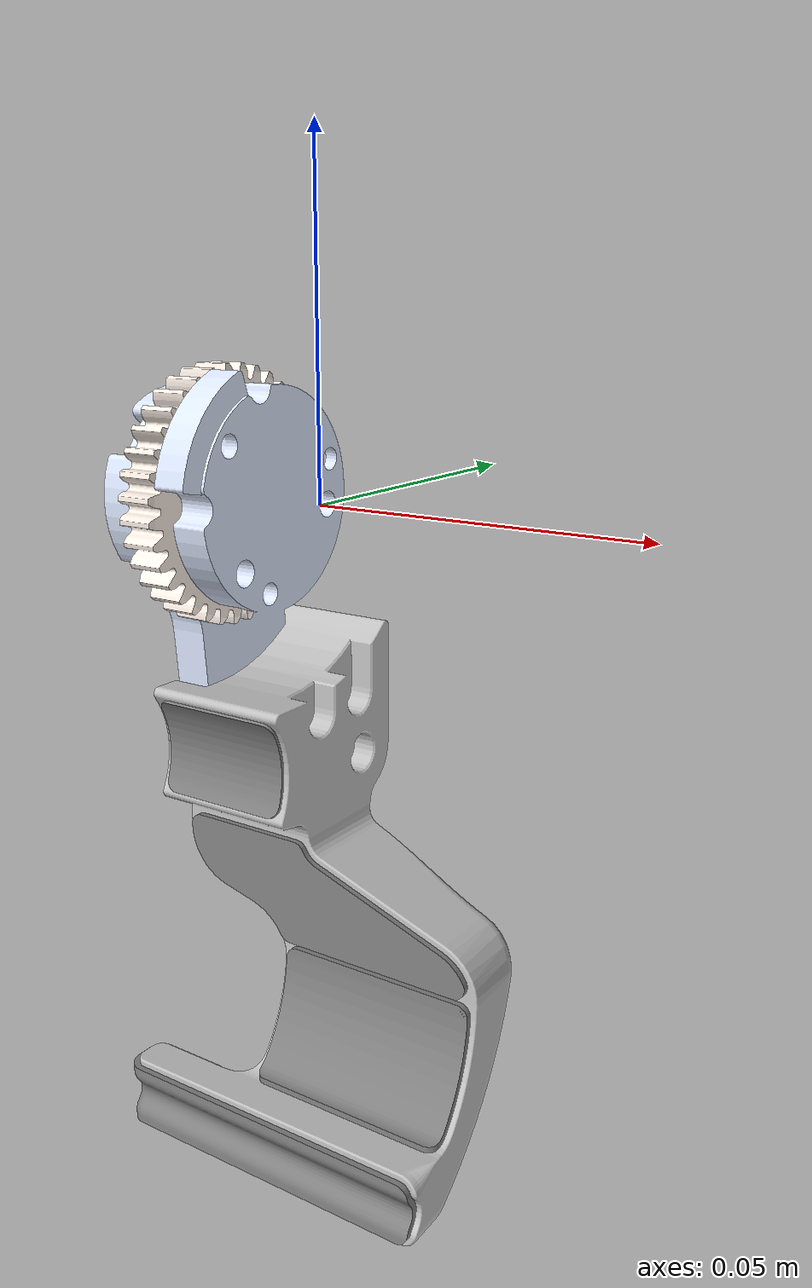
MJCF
<mujoco model="finger_inner_obj">
  <asset>
    <mesh name="finger_inner_00" file="finger_inner_00.obj"/>
    <mesh name="finger_inner_01" file="finger_inner_01.obj"/>
    <mesh name="finger_inner_02" file="finger_inner_02.obj"/>
    <mesh name="finger_inner_03" file="finger_inner_03.obj"/>
    <material name="finger_inner_00_mat" rgba="1.000000 0.949020 0.909804 1.000000"/>
    <material name="finger_inner_01_mat" rgba="0.501961 0.501961 0.501961 1.000000"/>
    <material name="finger_inner_02_mat" rgba="0.752941 0.752941 0.752941 1.000000"/>
    <material name="finger_inner_03_mat" rgba="0.866667 0.909804 1.000000 1.000000"/>
  </asset>
  <worldbody>
    <body name="finger_inner_obj">
      <geom type="mesh" mesh="finger_inner_00" material="finger_inner_00_mat" contype="0" conaffinity="0" group="1"/>
      <geom type="mesh" mesh="finger_inner_01" material="finger_inner_01_mat" contype="0" conaffinity="0" group="1"/>
      <geom type="mesh" mesh="finger_inner_02" material="finger_inner_02_mat" contype="0" conaffinity="0" group="1"/>
      <geom type="mesh" mesh="finger_inner_03" material="finger_inner_03_mat" contype="0" conaffinity="0" group="1"/>
    </body>
  </worldbody>
</mujoco>
